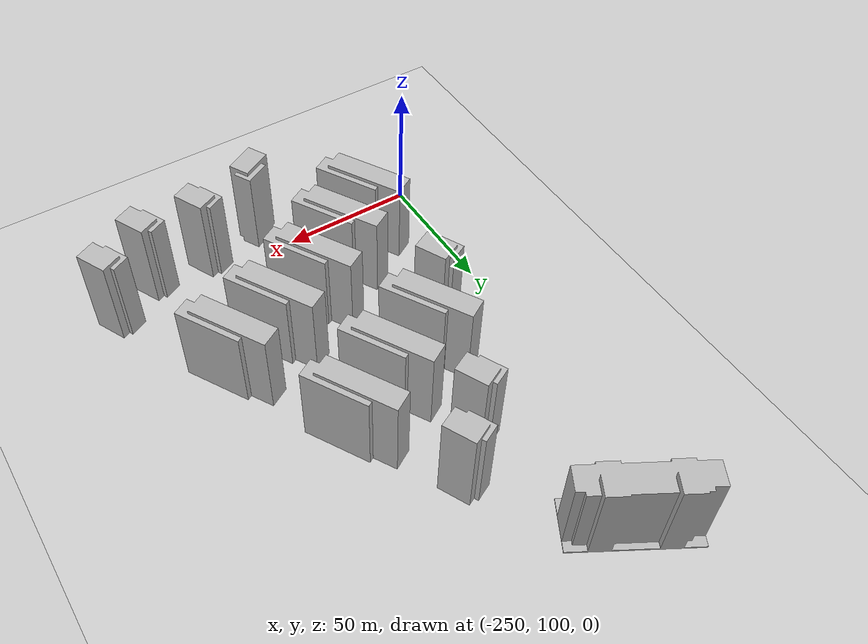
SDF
<sdf version="1.7">
 <world name="default">
  <model name="ground_plane">
   <static>1</static>
   <link name="link">
    <collision name="collision">
     <geometry><plane><normal>0 0 1</normal><size>100 100</size></plane></geometry>
     <surface><friction><ode><mu>100</mu><mu2>50</mu2></ode></friction></surface>
    </collision>
    <visual name="visual">
     <cast_shadows>0</cast_shadows>
     <geometry><plane><normal>0 0 1</normal><size>100 100</size></plane></geometry>
     <material>
      <script><uri>file://media/materials/scripts/gazebo.material</uri><name>Gazebo/Grey</name></script>
     </material>
    </visual>
   </link>
  </model>
  <model name="apartment1_1_clone_clone_2">
   <static>1</static>
   <link name="link_0">
    <inertial>
     <mass>1</mass>
     <inertia>
      <ixx>0.166667</ixx>
      <ixy>0</ixy>
      <ixz>0</ixz>
      <iyy>0.166667</iyy>
      <iyz>0</iyz>
      <izz>0.166667</izz>
     </inertia>
    </inertial>
    <pose>1e-06 -0 0 0 -0 0</pose>
    <visual name="visual">
     <geometry>
      <mesh><uri>model://apartment1/scripts/apartment1.dae</uri><scale>0.2 0.2 0.3</scale></mesh>
     </geometry>
     <material>
      <lighting>1</lighting>
      <script><uri>model://apartment1/scripts/apartment1.jpg</uri><name>__default__</name></script>
      <shader type="pixel"/>
     </material>
    </visual>
    <collision name="collision">
     <geometry>
      <mesh><uri>model://apartment1/scripts/apartment1.dae</uri><scale>0.2 0.2 0.3</scale></mesh>
     </geometry>
     <surface>
      <friction>
       <ode><mu>1</mu><mu2>1</mu2><fdir1>0 0 0</fdir1><slip1>0</slip1><slip2>0</slip2></ode>
       <torsional>
        <coefficient>1</coefficient>
        <patch_radius>0</patch_radius>
        <surface_radius>0</surface_radius>
        <use_patch_radius>1</use_patch_radius>
        <ode><slip>0</slip></ode>
       </torsional>
      </friction>
      <bounce><restitution_coefficient>0</restitution_coefficient><threshold>1e+06</threshold></bounce>
      <contact>
       <collide_without_contact>0</collide_without_contact>
       <collide_without_contact_bitmask>1</collide_without_contact_bitmask>
       <collide_bitmask>1</collide_bitmask>
       <ode>
        <soft_cfm>0</soft_cfm>
        <soft_erp>0.2</soft_erp>
        <kp>1e+13</kp>
        <kd>1</kd>
        <max_vel>0.01</max_vel>
        <min_depth>0</min_depth>
       </ode>
       <bullet>
        <split_impulse>1</split_impulse>
        <split_impulse_penetration_threshold>-0.01</split_impulse_penetration_threshold>
        <soft_cfm>0</soft_cfm>
        <soft_erp>0.2</soft_erp>
        <kp>1e+13</kp>
        <kd>1</kd>
       </bullet>
      </contact>
     </surface>
    </collision>
   </link>
   <static>0</static>
   <pose>-126.801 102.993 0 0 -0 0.45325</pose>
  </model>
  <model name="apartment1_1_clone_clone_2_clone">
   <static>1</static>
   <link name="link_0">
    <inertial>
     <mass>1</mass>
     <inertia>
      <ixx>0.166667</ixx>
      <ixy>0</ixy>
      <ixz>0</ixz>
      <iyy>0.166667</iyy>
      <iyz>0</iyz>
      <izz>0.166667</izz>
     </inertia>
    </inertial>
    <pose>1e-06 -0 0 0 -0 0</pose>
    <visual name="visual">
     <geometry>
      <mesh><uri>model://apartment1/scripts/apartment1.dae</uri><scale>0.2 0.2 0.3</scale></mesh>
     </geometry>
     <material>
      <lighting>1</lighting>
      <script><uri>model://apartment1/scripts/apartment1.jpg</uri><name>__default__</name></script>
      <shader type="pixel"/>
     </material>
    </visual>
    <collision name="collision">
     <geometry>
      <mesh><uri>model://apartment1/scripts/apartment1.dae</uri><scale>0.2 0.2 0.3</scale></mesh>
     </geometry>
     <surface>
      <friction>
       <ode><mu>1</mu><mu2>1</mu2><fdir1>0 0 0</fdir1><slip1>0</slip1><slip2>0</slip2></ode>
       <torsional>
        <coefficient>1</coefficient>
        <patch_radius>0</patch_radius>
        <surface_radius>0</surface_radius>
        <use_patch_radius>1</use_patch_radius>
        <ode><slip>0</slip></ode>
       </torsional>
      </friction>
      <bounce><restitution_coefficient>0</restitution_coefficient><threshold>1e+06</threshold></bounce>
      <contact>
       <collide_without_contact>0</collide_without_contact>
       <collide_without_contact_bitmask>1</collide_without_contact_bitmask>
       <collide_bitmask>1</collide_bitmask>
       <ode>
        <soft_cfm>0</soft_cfm>
        <soft_erp>0.2</soft_erp>
        <kp>1e+13</kp>
        <kd>1</kd>
        <max_vel>0.01</max_vel>
        <min_depth>0</min_depth>
       </ode>
       <bullet>
        <split_impulse>1</split_impulse>
        <split_impulse_penetration_threshold>-0.01</split_impulse_penetration_threshold>
        <soft_cfm>0</soft_cfm>
        <soft_erp>0.2</soft_erp>
        <kp>1e+13</kp>
        <kd>1</kd>
       </bullet>
      </contact>
     </surface>
    </collision>
   </link>
   <static>0</static>
   <pose>-144.611 93.2333 0 0 -0 0.45325</pose>
  </model>
  <model name="apartment1_1_clone_clone_2_clone_5_clone_3">
   <static>1</static>
   <link name="link_0">
    <inertial>
     <mass>1</mass>
     <inertia>
      <ixx>0.166667</ixx>
      <ixy>0</ixy>
      <ixz>0</ixz>
      <iyy>0.166667</iyy>
      <iyz>0</iyz>
      <izz>0.166667</izz>
     </inertia>
    </inertial>
    <pose>1e-06 -0 0 0 -0 0</pose>
    <visual name="visual">
     <geometry>
      <mesh><uri>model://apartment1/scripts/apartment1.dae</uri><scale>0.2 0.2 0.3</scale></mesh>
     </geometry>
     <material>
      <lighting>1</lighting>
      <script><uri>model://apartment1/scripts/apartment1.jpg</uri><name>__default__</name></script>
      <shader type="pixel"/>
     </material>
    </visual>
    <collision name="collision">
     <geometry>
      <mesh><uri>model://apartment1/scripts/apartment1.dae</uri><scale>0.2 0.2 0.3</scale></mesh>
     </geometry>
     <surface>
      <friction>
       <ode><mu>1</mu><mu2>1</mu2><fdir1>0 0 0</fdir1><slip1>0</slip1><slip2>0</slip2></ode>
       <torsional>
        <coefficient>1</coefficient>
        <patch_radius>0</patch_radius>
        <surface_radius>0</surface_radius>
        <use_patch_radius>1</use_patch_radius>
        <ode><slip>0</slip></ode>
       </torsional>
      </friction>
      <bounce><restitution_coefficient>0</restitution_coefficient><threshold>1e+06</threshold></bounce>
      <contact>
       <collide_without_contact>0</collide_without_contact>
       <collide_without_contact_bitmask>1</collide_without_contact_bitmask>
       <collide_bitmask>1</collide_bitmask>
       <ode>
        <soft_cfm>0</soft_cfm>
        <soft_erp>0.2</soft_erp>
        <kp>1e+13</kp>
        <kd>1</kd>
        <max_vel>0.01</max_vel>
        <min_depth>0</min_depth>
       </ode>
       <bullet>
        <split_impulse>1</split_impulse>
        <split_impulse_penetration_threshold>-0.01</split_impulse_penetration_threshold>
        <soft_cfm>0</soft_cfm>
        <soft_erp>0.2</soft_erp>
        <kp>1e+13</kp>
        <kd>1</kd>
       </bullet>
      </contact>
     </surface>
    </collision>
   </link>
   <static>0</static>
   <pose>-166.963 93.1335 0 0 -0 0.45325</pose>
  </model>
  <model name="apartment1_1_clone_clone_2_clone_5_clone_4_clone_4">
   <static>1</static>
   <link name="link_0">
    <inertial>
     <mass>1</mass>
     <inertia>
      <ixx>0.166667</ixx>
      <ixy>0</ixy>
      <ixz>0</ixz>
      <iyy>0.166667</iyy>
      <iyz>0</iyz>
      <izz>0.166667</izz>
     </inertia>
    </inertial>
    <pose>1e-06 -0 0 0 -0 0</pose>
    <visual name="visual">
     <geometry>
      <mesh><uri>model://apartment1/scripts/apartment1.dae</uri><scale>0.2 0.2 0.3</scale></mesh>
     </geometry>
     <material>
      <lighting>1</lighting>
      <script><uri>model://apartment1/scripts/apartment1.jpg</uri><name>__default__</name></script>
      <shader type="pixel"/>
     </material>
    </visual>
    <collision name="collision">
     <geometry>
      <mesh><uri>model://apartment1/scripts/apartment1.dae</uri><scale>0.2 0.2 0.3</scale></mesh>
     </geometry>
     <surface>
      <friction>
       <ode><mu>1</mu><mu2>1</mu2><fdir1>0 0 0</fdir1><slip1>0</slip1><slip2>0</slip2></ode>
       <torsional>
        <coefficient>1</coefficient>
        <patch_radius>0</patch_radius>
        <surface_radius>0</surface_radius>
        <use_patch_radius>1</use_patch_radius>
        <ode><slip>0</slip></ode>
       </torsional>
      </friction>
      <bounce><restitution_coefficient>0</restitution_coefficient><threshold>1e+06</threshold></bounce>
      <contact>
       <collide_without_contact>0</collide_without_contact>
       <collide_without_contact_bitmask>1</collide_without_contact_bitmask>
       <collide_bitmask>1</collide_bitmask>
       <ode>
        <soft_cfm>0</soft_cfm>
        <soft_erp>0.2</soft_erp>
        <kp>1e+13</kp>
        <kd>1</kd>
        <max_vel>0.01</max_vel>
        <min_depth>0</min_depth>
       </ode>
       <bullet>
        <split_impulse>1</split_impulse>
        <split_impulse_penetration_threshold>-0.01</split_impulse_penetration_threshold>
        <soft_cfm>0</soft_cfm>
        <soft_erp>0.2</soft_erp>
        <kp>1e+13</kp>
        <kd>1</kd>
       </bullet>
      </contact>
     </surface>
    </collision>
   </link>
   <static>0</static>
   <pose>-191.716 86.4352 0 0 0 -1.07862</pose>
  </model>
  <model name="apartment0_clone_2">
   <static>1</static>
   <link name="link_0">
    <inertial>
     <mass>1</mass>
     <inertia>
      <ixx>0.166667</ixx>
      <ixy>0</ixy>
      <ixz>0</ixz>
      <iyy>0.166667</iyy>
      <iyz>0</iyz>
      <izz>0.166667</izz>
     </inertia>
    </inertial>
    <pose>0.000226 2e-06 0 0 -0 0</pose>
    <visual name="visual">
     <geometry>
      <mesh><uri>model://apartment0/scripts/apartment.dae</uri><scale>0.6 0.3 0.2</scale></mesh>
     </geometry>
     <material>
      <lighting>1</lighting>
      <script><uri>model://apartment0/scripts/building.jpg</uri><name>__default__</name></script>
      <shader type="pixel"/>
     </material>
    </visual>
    <collision name="collision">
     <geometry>
      <mesh><uri>model://apartment0/scripts/apartment.dae</uri><scale>0.6 0.3 0.2</scale></mesh>
     </geometry>
     <surface>
      <friction>
       <ode><mu>1</mu><mu2>1</mu2><fdir1>0 0 0</fdir1><slip1>0</slip1><slip2>0</slip2></ode>
       <torsional>
        <coefficient>1</coefficient>
        <patch_radius>0</patch_radius>
        <surface_radius>0</surface_radius>
        <use_patch_radius>1</use_patch_radius>
        <ode><slip>0</slip></ode>
       </torsional>
      </friction>
      <bounce><restitution_coefficient>0</restitution_coefficient><threshold>1e+06</threshold></bounce>
      <contact>
       <collide_without_contact>0</collide_without_contact>
       <collide_without_contact_bitmask>1</collide_without_contact_bitmask>
       <collide_bitmask>1</collide_bitmask>
       <ode>
        <soft_cfm>0</soft_cfm>
        <soft_erp>0.2</soft_erp>
        <kp>1e+13</kp>
        <kd>1</kd>
        <max_vel>0.01</max_vel>
        <min_depth>0</min_depth>
       </ode>
       <bullet>
        <split_impulse>1</split_impulse>
        <split_impulse_penetration_threshold>-0.01</split_impulse_penetration_threshold>
        <soft_cfm>0</soft_cfm>
        <soft_erp>0.2</soft_erp>
        <kp>1e+13</kp>
        <kd>1</kd>
       </bullet>
      </contact>
     </surface>
    </collision>
   </link>
   <static>0</static>
   <pose>-231.707 264.223 0.802359 0 0 -0.510299</pose>
  </model>
  <model name="apartment3_clone_14">
   <static>1</static>
   <link name="link_0">
    <inertial>
     <mass>1</mass>
     <inertia>
      <ixx>0.166667</ixx>
      <ixy>0</ixy>
      <ixz>0</ixz>
      <iyy>0.166667</iyy>
      <iyz>0</iyz>
      <izz>0.166667</izz>
     </inertia>
    </inertial>
    <pose>1e-06 -0 0 0 -0 0</pose>
    <visual name="visual">
     <geometry>
      <mesh><uri>model://apartment1/scripts/apartment1.dae</uri><scale>0.2 0.5 0.28</scale></mesh>
     </geometry>
     <material>
      <lighting>1</lighting>
      <script><uri>model://apartment1/scripts/apartment1.jpg</uri><name>__default__</name></script>
      <shader type="pixel"/>
     </material>
    </visual>
    <collision name="collision">
     <geometry>
      <mesh><uri>model://apartment1/scripts/apartment1.dae</uri><scale>0.2 0.5 0.28</scale></mesh>
     </geometry>
     <surface>
      <friction>
       <ode><mu>1</mu><mu2>1</mu2><fdir1>0 0 0</fdir1><slip1>0</slip1><slip2>0</slip2></ode>
       <torsional>
        <coefficient>1</coefficient>
        <patch_radius>0</patch_radius>
        <surface_radius>0</surface_radius>
        <use_patch_radius>1</use_patch_radius>
        <ode><slip>0</slip></ode>
       </torsional>
      </friction>
      <bounce><restitution_coefficient>0</restitution_coefficient><threshold>1e+06</threshold></bounce>
      <contact>
       <collide_without_contact>0</collide_without_contact>
       <collide_without_contact_bitmask>1</collide_without_contact_bitmask>
       <collide_bitmask>1</collide_bitmask>
       <ode>
        <soft_cfm>0</soft_cfm>
        <soft_erp>0.2</soft_erp>
        <kp>1e+13</kp>
        <kd>1</kd>
        <max_vel>0.01</max_vel>
        <min_depth>0</min_depth>
       </ode>
       <bullet>
        <split_impulse>1</split_impulse>
        <split_impulse_penetration_threshold>-0.01</split_impulse_penetration_threshold>
        <soft_cfm>0</soft_cfm>
        <soft_erp>0.2</soft_erp>
        <kp>1e+13</kp>
        <kd>1</kd>
       </bullet>
      </contact>
     </surface>
    </collision>
   </link>
   <static>0</static>
   <pose>-153.869 149.775 0 0 0 -2.62078</pose>
  </model>
  <model name="apartment3_clone_14_clone">
   <static>1</static>
   <link name="link_0">
    <inertial>
     <mass>1</mass>
     <inertia>
      <ixx>0.166667</ixx>
      <ixy>0</ixy>
      <ixz>0</ixz>
      <iyy>0.166667</iyy>
      <iyz>0</iyz>
      <izz>0.166667</izz>
     </inertia>
    </inertial>
    <pose>1e-06 -0 0 0 -0 0</pose>
    <visual name="visual">
     <geometry>
      <mesh><uri>model://apartment1/scripts/apartment1.dae</uri><scale>0.2 0.5 0.28</scale></mesh>
     </geometry>
     <material>
      <lighting>1</lighting>
      <script><uri>model://apartment1/scripts/apartment1.jpg</uri><name>__default__</name></script>
      <shader type="pixel"/>
     </material>
    </visual>
    <collision name="collision">
     <geometry>
      <mesh><uri>model://apartment1/scripts/apartment1.dae</uri><scale>0.2 0.5 0.28</scale></mesh>
     </geometry>
     <surface>
      <friction>
       <ode><mu>1</mu><mu2>1</mu2><fdir1>0 0 0</fdir1><slip1>0</slip1><slip2>0</slip2></ode>
       <torsional>
        <coefficient>1</coefficient>
        <patch_radius>0</patch_radius>
        <surface_radius>0</surface_radius>
        <use_patch_radius>1</use_patch_radius>
        <ode><slip>0</slip></ode>
       </torsional>
      </friction>
      <bounce><restitution_coefficient>0</restitution_coefficient><threshold>1e+06</threshold></bounce>
      <contact>
       <collide_without_contact>0</collide_without_contact>
       <collide_without_contact_bitmask>1</collide_without_contact_bitmask>
       <collide_bitmask>1</collide_bitmask>
       <ode>
        <soft_cfm>0</soft_cfm>
        <soft_erp>0.2</soft_erp>
        <kp>1e+13</kp>
        <kd>1</kd>
        <max_vel>0.01</max_vel>
        <min_depth>0</min_depth>
       </ode>
       <bullet>
        <split_impulse>1</split_impulse>
        <split_impulse_penetration_threshold>-0.01</split_impulse_penetration_threshold>
        <soft_cfm>0</soft_cfm>
        <soft_erp>0.2</soft_erp>
        <kp>1e+13</kp>
        <kd>1</kd>
       </bullet>
      </contact>
     </surface>
    </collision>
   </link>
   <static>0</static>
   <pose>-176.56 193.178 0 0 0 -2.62078</pose>
  </model>
  <model name="apartment3_clone_14_clone_0">
   <static>1</static>
   <link name="link_0">
    <inertial>
     <mass>1</mass>
     <inertia>
      <ixx>0.166667</ixx>
      <ixy>0</ixy>
      <ixz>0</ixz>
      <iyy>0.166667</iyy>
      <iyz>0</iyz>
      <izz>0.166667</izz>
     </inertia>
    </inertial>
    <pose>1e-06 -0 0 0 -0 0</pose>
    <visual name="visual">
     <geometry>
      <mesh><uri>model://apartment1/scripts/apartment1.dae</uri><scale>0.2 0.5 0.28</scale></mesh>
     </geometry>
     <material>
      <lighting>1</lighting>
      <script><uri>model://apartment1/scripts/apartment1.jpg</uri><name>__default__</name></script>
      <shader type="pixel"/>
     </material>
    </visual>
    <collision name="collision">
     <geometry>
      <mesh><uri>model://apartment1/scripts/apartment1.dae</uri><scale>0.2 0.5 0.28</scale></mesh>
     </geometry>
     <surface>
      <friction>
       <ode><mu>1</mu><mu2>1</mu2><fdir1>0 0 0</fdir1><slip1>0</slip1><slip2>0</slip2></ode>
       <torsional>
        <coefficient>1</coefficient>
        <patch_radius>0</patch_radius>
        <surface_radius>0</surface_radius>
        <use_patch_radius>1</use_patch_radius>
        <ode><slip>0</slip></ode>
       </torsional>
      </friction>
      <bounce><restitution_coefficient>0</restitution_coefficient><threshold>1e+06</threshold></bounce>
      <contact>
       <collide_without_contact>0</collide_without_contact>
       <collide_without_contact_bitmask>1</collide_without_contact_bitmask>
       <collide_bitmask>1</collide_bitmask>
       <ode>
        <soft_cfm>0</soft_cfm>
        <soft_erp>0.2</soft_erp>
        <kp>1e+13</kp>
        <kd>1</kd>
        <max_vel>0.01</max_vel>
        <min_depth>0</min_depth>
       </ode>
       <bullet>
        <split_impulse>1</split_impulse>
        <split_impulse_penetration_threshold>-0.01</split_impulse_penetration_threshold>
        <soft_cfm>0</soft_cfm>
        <soft_erp>0.2</soft_erp>
        <kp>1e+13</kp>
        <kd>1</kd>
       </bullet>
      </contact>
     </surface>
    </collision>
   </link>
   <static>0</static>
   <pose>-174.254 144.069 0 0 0 -2.62078</pose>
  </model>
  <model name="apartment3_clone_14_clone_1">
   <static>1</static>
   <link name="link_0">
    <inertial>
     <mass>1</mass>
     <inertia>
      <ixx>0.166667</ixx>
      <ixy>0</ixy>
      <ixz>0</ixz>
      <iyy>0.166667</iyy>
      <iyz>0</iyz>
      <izz>0.166667</izz>
     </inertia>
    </inertial>
    <pose>1e-06 -0 0 0 -0 0</pose>
    <visual name="visual">
     <geometry>
      <mesh><uri>model://apartment1/scripts/apartment1.dae</uri><scale>0.2 0.5 0.28</scale></mesh>
     </geometry>
     <material>
      <lighting>1</lighting>
      <script><uri>model://apartment1/scripts/apartment1.jpg</uri><name>__default__</name></script>
      <shader type="pixel"/>
     </material>
    </visual>
    <collision name="collision">
     <geometry>
      <mesh><uri>model://apartment1/scripts/apartment1.dae</uri><scale>0.2 0.5 0.28</scale></mesh>
     </geometry>
     <surface>
      <friction>
       <ode><mu>1</mu><mu2>1</mu2><fdir1>0 0 0</fdir1><slip1>0</slip1><slip2>0</slip2></ode>
       <torsional>
        <coefficient>1</coefficient>
        <patch_radius>0</patch_radius>
        <surface_radius>0</surface_radius>
        <use_patch_radius>1</use_patch_radius>
        <ode><slip>0</slip></ode>
       </torsional>
      </friction>
      <bounce><restitution_coefficient>0</restitution_coefficient><threshold>1e+06</threshold></bounce>
      <contact>
       <collide_without_contact>0</collide_without_contact>
       <collide_without_contact_bitmask>1</collide_without_contact_bitmask>
       <collide_bitmask>1</collide_bitmask>
       <ode>
        <soft_cfm>0</soft_cfm>
        <soft_erp>0.2</soft_erp>
        <kp>1e+13</kp>
        <kd>1</kd>
        <max_vel>0.01</max_vel>
        <min_depth>0</min_depth>
       </ode>
       <bullet>
        <split_impulse>1</split_impulse>
        <split_impulse_penetration_threshold>-0.01</split_impulse_penetration_threshold>
        <soft_cfm>0</soft_cfm>
        <soft_erp>0.2</soft_erp>
        <kp>1e+13</kp>
        <kd>1</kd>
       </bullet>
      </contact>
     </surface>
    </collision>
   </link>
   <static>0</static>
   <pose>-195.925 183.531 0 0 0 -2.62078</pose>
  </model>
  <model name="apartment3_clone_14_clone_2">
   <static>1</static>
   <link name="link_0">
    <inertial>
     <mass>1</mass>
     <inertia>
      <ixx>0.166667</ixx>
      <ixy>0</ixy>
      <ixz>0</ixz>
      <iyy>0.166667</iyy>
      <iyz>0</iyz>
      <izz>0.166667</izz>
     </inertia>
    </inertial>
    <pose>1e-06 -0 0 0 -0 0</pose>
    <visual name="visual">
     <geometry>
      <mesh><uri>model://apartment1/scripts/apartment1.dae</uri><scale>0.2 0.5 0.28</scale></mesh>
     </geometry>
     <material>
      <lighting>1</lighting>
      <script><uri>model://apartment1/scripts/apartment1.jpg</uri><name>__default__</name></script>
      <shader type="pixel"/>
     </material>
    </visual>
    <collision name="collision">
     <geometry>
      <mesh><uri>model://apartment1/scripts/apartment1.dae</uri><scale>0.2 0.5 0.28</scale></mesh>
     </geometry>
     <surface>
      <friction>
       <ode><mu>1</mu><mu2>1</mu2><fdir1>0 0 0</fdir1><slip1>0</slip1><slip2>0</slip2></ode>
       <torsional>
        <coefficient>1</coefficient>
        <patch_radius>0</patch_radius>
        <surface_radius>0</surface_radius>
        <use_patch_radius>1</use_patch_radius>
        <ode><slip>0</slip></ode>
       </torsional>
      </friction>
      <bounce><restitution_coefficient>0</restitution_coefficient><threshold>1e+06</threshold></bounce>
      <contact>
       <collide_without_contact>0</collide_without_contact>
       <collide_without_contact_bitmask>1</collide_without_contact_bitmask>
       <collide_bitmask>1</collide_bitmask>
       <ode>
        <soft_cfm>0</soft_cfm>
        <soft_erp>0.2</soft_erp>
        <kp>1e+13</kp>
        <kd>1</kd>
        <max_vel>0.01</max_vel>
        <min_depth>0</min_depth>
       </ode>
       <bullet>
        <split_impulse>1</split_impulse>
        <split_impulse_penetration_threshold>-0.01</split_impulse_penetration_threshold>
        <soft_cfm>0</soft_cfm>
        <soft_erp>0.2</soft_erp>
        <kp>1e+13</kp>
        <kd>1</kd>
       </bullet>
      </contact>
     </surface>
    </collision>
   </link>
   <static>0</static>
   <pose>-194.059 135.053 0 0 0 -2.62078</pose>
  </model>
  <model name="apartment3_clone_14_clone_3">
   <static>1</static>
   <link name="link_0">
    <inertial>
     <mass>1</mass>
     <inertia>
      <ixx>0.166667</ixx>
      <ixy>0</ixy>
      <ixz>0</ixz>
      <iyy>0.166667</iyy>
      <iyz>0</iyz>
      <izz>0.166667</izz>
     </inertia>
    </inertial>
    <pose>1e-06 -0 0 0 -0 0</pose>
    <visual name="visual">
     <geometry>
      <mesh><uri>model://apartment1/scripts/apartment1.dae</uri><scale>0.2 0.5 0.28</scale></mesh>
     </geometry>
     <material>
      <lighting>1</lighting>
      <script><uri>model://apartment1/scripts/apartment1.jpg</uri><name>__default__</name></script>
      <shader type="pixel"/>
     </material>
    </visual>
    <collision name="collision">
     <geometry>
      <mesh><uri>model://apartment1/scripts/apartment1.dae</uri><scale>0.2 0.5 0.28</scale></mesh>
     </geometry>
     <surface>
      <friction>
       <ode><mu>1</mu><mu2>1</mu2><fdir1>0 0 0</fdir1><slip1>0</slip1><slip2>0</slip2></ode>
       <torsional>
        <coefficient>1</coefficient>
        <patch_radius>0</patch_radius>
        <surface_radius>0</surface_radius>
        <use_patch_radius>1</use_patch_radius>
        <ode><slip>0</slip></ode>
       </torsional>
      </friction>
      <bounce><restitution_coefficient>0</restitution_coefficient><threshold>1e+06</threshold></bounce>
      <contact>
       <collide_without_contact>0</collide_without_contact>
       <collide_without_contact_bitmask>1</collide_without_contact_bitmask>
       <collide_bitmask>1</collide_bitmask>
       <ode>
        <soft_cfm>0</soft_cfm>
        <soft_erp>0.2</soft_erp>
        <kp>1e+13</kp>
        <kd>1</kd>
        <max_vel>0.01</max_vel>
        <min_depth>0</min_depth>
       </ode>
       <bullet>
        <split_impulse>1</split_impulse>
        <split_impulse_penetration_threshold>-0.01</split_impulse_penetration_threshold>
        <soft_cfm>0</soft_cfm>
        <soft_erp>0.2</soft_erp>
        <kp>1e+13</kp>
        <kd>1</kd>
       </bullet>
      </contact>
     </surface>
    </collision>
   </link>
   <static>0</static>
   <pose>-216.803 174.969 0 0 0 -2.62078</pose>
  </model>
  <model name="apartment1_1_clone_clone_2_clone_clone">
   <static>1</static>
   <link name="link_0">
    <inertial>
     <mass>1</mass>
     <inertia>
      <ixx>0.166667</ixx>
      <ixy>0</ixy>
      <ixz>0</ixz>
      <iyy>0.166667</iyy>
      <iyz>0</iyz>
      <izz>0.166667</izz>
     </inertia>
    </inertial>
    <pose>1e-06 -0 0 0 -0 0</pose>
    <visual name="visual">
     <geometry>
      <mesh><uri>model://apartment1/scripts/apartment1.dae</uri><scale>0.2 0.2 0.3</scale></mesh>
     </geometry>
     <material>
      <lighting>1</lighting>
      <script><uri>model://apartment1/scripts/apartment1.jpg</uri><name>__default__</name></script>
      <shader type="pixel"/>
     </material>
    </visual>
    <collision name="collision">
     <geometry>
      <mesh><uri>model://apartment1/scripts/apartment1.dae</uri><scale>0.2 0.2 0.3</scale></mesh>
     </geometry>
     <surface>
      <friction>
       <ode><mu>1</mu><mu2>1</mu2><fdir1>0 0 0</fdir1><slip1>0</slip1><slip2>0</slip2></ode>
       <torsional>
        <coefficient>1</coefficient>
        <patch_radius>0</patch_radius>
        <surface_radius>0</surface_radius>
        <use_patch_radius>1</use_patch_radius>
        <ode><slip>0</slip></ode>
       </torsional>
      </friction>
      <bounce><restitution_coefficient>0</restitution_coefficient><threshold>1e+06</threshold></bounce>
      <contact>
       <collide_without_contact>0</collide_without_contact>
       <collide_without_contact_bitmask>1</collide_without_contact_bitmask>
       <collide_bitmask>1</collide_bitmask>
       <ode>
        <soft_cfm>0</soft_cfm>
        <soft_erp>0.2</soft_erp>
        <kp>1e+13</kp>
        <kd>1</kd>
        <max_vel>0.01</max_vel>
        <min_depth>0</min_depth>
       </ode>
       <bullet>
        <split_impulse>1</split_impulse>
        <split_impulse_penetration_threshold>-0.01</split_impulse_penetration_threshold>
        <soft_cfm>0</soft_cfm>
        <soft_erp>0.2</soft_erp>
        <kp>1e+13</kp>
        <kd>1</kd>
       </bullet>
      </contact>
     </surface>
    </collision>
   </link>
   <static>0</static>
   <pose>-194.028 224.384 0 0 -0 0.45325</pose>
  </model>
  <model name="apartment1_1_clone_clone_2_clone_clone_0">
   <static>1</static>
   <link name="link_0">
    <inertial>
     <mass>1</mass>
     <inertia>
      <ixx>0.166667</ixx>
      <ixy>0</ixy>
      <ixz>0</ixz>
      <iyy>0.166667</iyy>
      <iyz>0</iyz>
      <izz>0.166667</izz>
     </inertia>
    </inertial>
    <pose>1e-06 -0 0 0 -0 0</pose>
    <visual name="visual">
     <geometry>
      <mesh><uri>model://apartment1/scripts/apartment1.dae</uri><scale>0.2 0.2 0.3</scale></mesh>
     </geometry>
     <material>
      <lighting>1</lighting>
      <script><uri>model://apartment1/scripts/apartment1.jpg</uri><name>__default__</name></script>
      <shader type="pixel"/>
     </material>
    </visual>
    <collision name="collision">
     <geometry>
      <mesh><uri>model://apartment1/scripts/apartment1.dae</uri><scale>0.2 0.2 0.3</scale></mesh>
     </geometry>
     <surface>
      <friction>
       <ode><mu>1</mu><mu2>1</mu2><fdir1>0 0 0</fdir1><slip1>0</slip1><slip2>0</slip2></ode>
       <torsional>
        <coefficient>1</coefficient>
        <patch_radius>0</patch_radius>
        <surface_radius>0</surface_radius>
        <use_patch_radius>1</use_patch_radius>
        <ode><slip>0</slip></ode>
       </torsional>
      </friction>
      <bounce><restitution_coefficient>0</restitution_coefficient><threshold>1e+06</threshold></bounce>
      <contact>
       <collide_without_contact>0</collide_without_contact>
       <collide_without_contact_bitmask>1</collide_without_contact_bitmask>
       <collide_bitmask>1</collide_bitmask>
       <ode>
        <soft_cfm>0</soft_cfm>
        <soft_erp>0.2</soft_erp>
        <kp>1e+13</kp>
        <kd>1</kd>
        <max_vel>0.01</max_vel>
        <min_depth>0</min_depth>
       </ode>
       <bullet>
        <split_impulse>1</split_impulse>
        <split_impulse_penetration_threshold>-0.01</split_impulse_penetration_threshold>
        <soft_cfm>0</soft_cfm>
        <soft_erp>0.2</soft_erp>
        <kp>1e+13</kp>
        <kd>1</kd>
       </bullet>
      </contact>
     </surface>
    </collision>
   </link>
   <static>0</static>
   <pose>-208.907 209.185 0 0 -0 0.45325</pose>
  </model>
  <model name="apartment3_clone_14_clone_2_clone">
   <static>1</static>
   <link name="link_0">
    <inertial>
     <mass>1</mass>
     <inertia>
      <ixx>0.166667</ixx>
      <ixy>0</ixy>
      <ixz>0</ixz>
      <iyy>0.166667</iyy>
      <iyz>0</iyz>
      <izz>0.166667</izz>
     </inertia>
    </inertial>
    <pose>1e-06 -0 0 0 -0 0</pose>
    <visual name="visual">
     <geometry>
      <mesh><uri>model://apartment1/scripts/apartment1.dae</uri><scale>0.2 0.5 0.28</scale></mesh>
     </geometry>
     <material>
      <lighting>1</lighting>
      <script><uri>model://apartment1/scripts/apartment1.jpg</uri><name>__default__</name></script>
      <shader type="pixel"/>
     </material>
    </visual>
    <collision name="collision">
     <geometry>
      <mesh><uri>model://apartment1/scripts/apartment1.dae</uri><scale>0.2 0.5 0.28</scale></mesh>
     </geometry>
     <surface>
      <friction>
       <ode><mu>1</mu><mu2>1</mu2><fdir1>0 0 0</fdir1><slip1>0</slip1><slip2>0</slip2></ode>
       <torsional>
        <coefficient>1</coefficient>
        <patch_radius>0</patch_radius>
        <surface_radius>0</surface_radius>
        <use_patch_radius>1</use_patch_radius>
        <ode><slip>0</slip></ode>
       </torsional>
      </friction>
      <bounce><restitution_coefficient>0</restitution_coefficient><threshold>1e+06</threshold></bounce>
      <contact>
       <collide_without_contact>0</collide_without_contact>
       <collide_without_contact_bitmask>1</collide_without_contact_bitmask>
       <collide_bitmask>1</collide_bitmask>
       <ode>
        <soft_cfm>0</soft_cfm>
        <soft_erp>0.2</soft_erp>
        <kp>1e+13</kp>
        <kd>1</kd>
        <max_vel>0.01</max_vel>
        <min_depth>0</min_depth>
       </ode>
       <bullet>
        <split_impulse>1</split_impulse>
        <split_impulse_penetration_threshold>-0.01</split_impulse_penetration_threshold>
        <soft_cfm>0</soft_cfm>
        <soft_erp>0.2</soft_erp>
        <kp>1e+13</kp>
        <kd>1</kd>
       </bullet>
      </contact>
     </surface>
    </collision>
   </link>
   <static>0</static>
   <pose>-211.508 123.382 0 0 0 -2.62078</pose>
  </model>
  <model name="apartment3_clone_14_clone_2_clone_0">
   <static>1</static>
   <link name="link_0">
    <inertial>
     <mass>1</mass>
     <inertia>
      <ixx>0.166667</ixx>
      <ixy>0</ixy>
      <ixz>0</ixz>
      <iyy>0.166667</iyy>
      <iyz>0</iyz>
      <izz>0.166667</izz>
     </inertia>
    </inertial>
    <pose>1e-06 -0 0 0 -0 0</pose>
    <visual name="visual">
     <geometry>
      <mesh><uri>model://apartment1/scripts/apartment1.dae</uri><scale>0.2 0.5 0.28</scale></mesh>
     </geometry>
     <material>
      <lighting>1</lighting>
      <script><uri>model://apartment1/scripts/apartment1.jpg</uri><name>__default__</name></script>
      <shader type="pixel"/>
     </material>
    </visual>
    <collision name="collision">
     <geometry>
      <mesh><uri>model://apartment1/scripts/apartment1.dae</uri><scale>0.2 0.5 0.28</scale></mesh>
     </geometry>
     <surface>
      <friction>
       <ode><mu>1</mu><mu2>1</mu2><fdir1>0 0 0</fdir1><slip1>0</slip1><slip2>0</slip2></ode>
       <torsional>
        <coefficient>1</coefficient>
        <patch_radius>0</patch_radius>
        <surface_radius>0</surface_radius>
        <use_patch_radius>1</use_patch_radius>
        <ode><slip>0</slip></ode>
       </torsional>
      </friction>
      <bounce><restitution_coefficient>0</restitution_coefficient><threshold>1e+06</threshold></bounce>
      <contact>
       <collide_without_contact>0</collide_without_contact>
       <collide_without_contact_bitmask>1</collide_without_contact_bitmask>
       <collide_bitmask>1</collide_bitmask>
       <ode>
        <soft_cfm>0</soft_cfm>
        <soft_erp>0.2</soft_erp>
        <kp>1e+13</kp>
        <kd>1</kd>
        <max_vel>0.01</max_vel>
        <min_depth>0</min_depth>
       </ode>
       <bullet>
        <split_impulse>1</split_impulse>
        <split_impulse_penetration_threshold>-0.01</split_impulse_penetration_threshold>
        <soft_cfm>0</soft_cfm>
        <soft_erp>0.2</soft_erp>
        <kp>1e+13</kp>
        <kd>1</kd>
       </bullet>
      </contact>
     </surface>
    </collision>
   </link>
   <static>0</static>
   <pose>-227.582 112.934 0 0 0 -2.62078</pose>
  </model>
  <model name="apartment1_1_clone_clone_2_clone_5_clone_3_clone_1">
   <static>1</static>
   <link name="link_0">
    <inertial>
     <mass>1</mass>
     <inertia>
      <ixx>0.166667</ixx>
      <ixy>0</ixy>
      <ixz>0</ixz>
      <iyy>0.166667</iyy>
      <iyz>0</iyz>
      <izz>0.166667</izz>
     </inertia>
    </inertial>
    <pose>1e-06 -0 0 0 -0 0</pose>
    <visual name="visual">
     <geometry>
      <mesh><uri>model://apartment1/scripts/apartment1.dae</uri><scale>0.2 0.2 0.3</scale></mesh>
     </geometry>
     <material>
      <lighting>1</lighting>
      <script><uri>model://apartment1/scripts/apartment1.jpg</uri><name>__default__</name></script>
      <shader type="pixel"/>
     </material>
    </visual>
    <collision name="collision">
     <geometry>
      <mesh><uri>model://apartment1/scripts/apartment1.dae</uri><scale>0.2 0.2 0.3</scale></mesh>
     </geometry>
     <surface>
      <friction>
       <ode><mu>1</mu><mu2>1</mu2><fdir1>0 0 0</fdir1><slip1>0</slip1><slip2>0</slip2></ode>
       <torsional>
        <coefficient>1</coefficient>
        <patch_radius>0</patch_radius>
        <surface_radius>0</surface_radius>
        <use_patch_radius>1</use_patch_radius>
        <ode><slip>0</slip></ode>
       </torsional>
      </friction>
      <bounce><restitution_coefficient>0</restitution_coefficient><threshold>1e+06</threshold></bounce>
      <contact>
       <collide_without_contact>0</collide_without_contact>
       <collide_without_contact_bitmask>1</collide_without_contact_bitmask>
       <collide_bitmask>1</collide_bitmask>
       <ode>
        <soft_cfm>0</soft_cfm>
        <soft_erp>0.2</soft_erp>
        <kp>1e+13</kp>
        <kd>1</kd>
        <max_vel>0.01</max_vel>
        <min_depth>0</min_depth>
       </ode>
       <bullet>
        <split_impulse>1</split_impulse>
        <split_impulse_penetration_threshold>-0.01</split_impulse_penetration_threshold>
        <soft_cfm>0</soft_cfm>
        <soft_erp>0.2</soft_erp>
        <kp>1e+13</kp>
        <kd>1</kd>
       </bullet>
      </contact>
     </surface>
    </collision>
   </link>
   <static>0</static>
   <pose>-226.903 158.786 0 0 -0 0.45325</pose>
  </model>
 </world>
</sdf>
